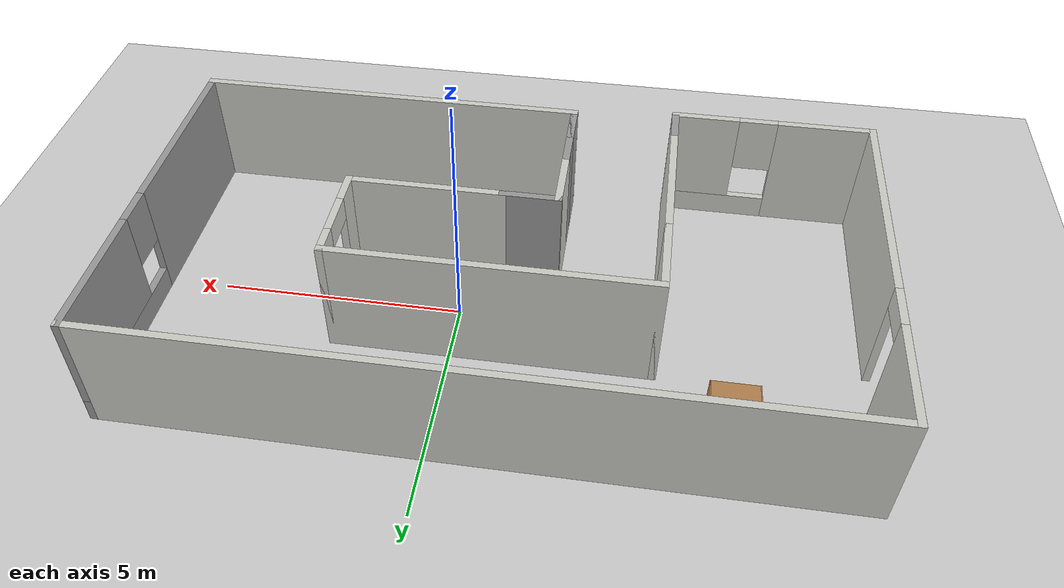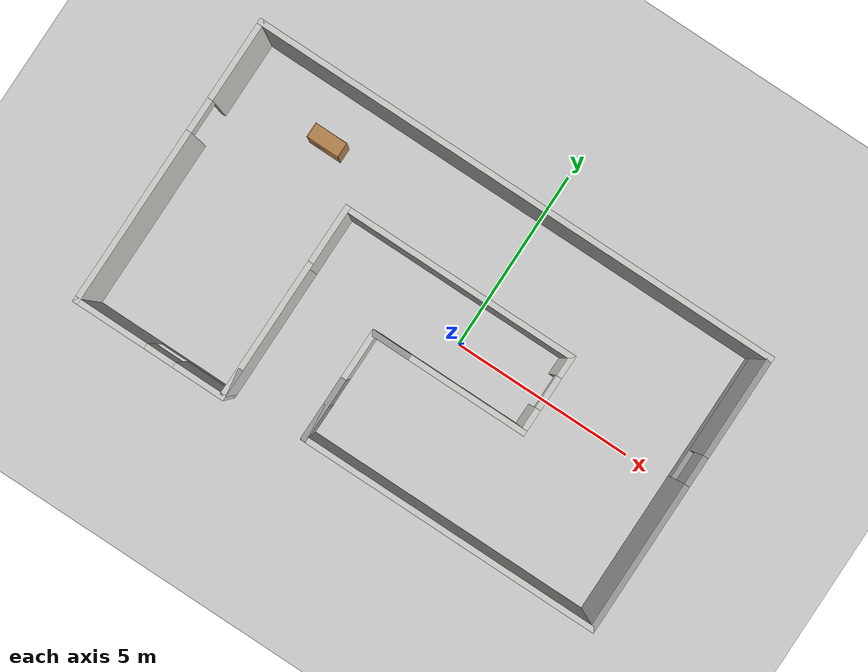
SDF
<sdf version="1.7">
 <world name="default">
  <light name="sun" type="directional">
   <pose>0 0 10 0 -0 0</pose>
   <diffuse>0.8 0.8 0.8 1</diffuse>
   <specular>0.2 0.2 0.2 1</specular>
   <attenuation>
    <range>1000</range>
    <constant>0.9</constant>
    <linear>0.01</linear>
    <quadratic>0.001</quadratic>
   </attenuation>
   <direction>-0.5 0.1 -0.9</direction>
   <spot><inner_angle>0</inner_angle><outer_angle>0</outer_angle><falloff>0</falloff></spot>
  </light>
  <model name="ground_plane">
   <static>1</static>
   <link name="link">
    <collision name="collision">
     <geometry><plane><normal>0 0 1</normal><size>100 100</size></plane></geometry>
     <surface>
      <contact><collide_bitmask>65535</collide_bitmask></contact>
      <friction><ode><mu>100</mu><mu2>50</mu2></ode></friction>
     </surface>
    </collision>
    <visual name="visual">
     <cast_shadows>0</cast_shadows>
     <geometry><plane><normal>0 0 1</normal><size>100 100</size></plane></geometry>
     <material>
      <script><uri>file://media/materials/scripts/gazebo.material</uri><name>Gazebo/Grey</name></script>
     </material>
    </visual>
   </link>
  </model>
  <gravity>0 0 -9.8</gravity>
  <magnetic_field>6e-06 2.3e-05 -4.2e-05</magnetic_field>
  <atmosphere type="adiabatic"/>
  <physics type="ode">
   <max_step_size>0.001</max_step_size>
   <real_time_factor>1</real_time_factor>
   <real_time_update_rate>1000</real_time_update_rate>
  </physics>
  <scene><ambient>0.4 0.4 0.4 1</ambient><background>0.7 0.7 0.7 1</background><shadows>1</shadows></scene>
  <audio><device>default</device></audio>
  <spherical_coordinates>
   <surface_model>EARTH_WGS84</surface_model>
   <latitude_deg>0</latitude_deg>
   <longitude_deg>0</longitude_deg>
   <elevation>0</elevation>
   <heading_deg>0</heading_deg>
  </spherical_coordinates>
  <model name="Untitled">
   <pose>-0.925 -0.205 0 0 -0 0</pose>
   <link name="Wall_0">
    <collision name="Wall_0_Collision">
     <geometry><box><size>0.75 0.15 2.5</size></box></geometry>
     <pose>0 0 1.25 0 -0 0</pose>
    </collision>
    <visual name="Wall_0_Visual">
     <pose>0 0 1.25 0 -0 0</pose>
     <geometry><box><size>0.75 0.15 2.5</size></box></geometry>
     <material>
      <script><uri>file://media/materials/scripts/gazebo.material</uri><name>Gazebo/Grey</name></script>
      <ambient>1 1 1 1</ambient>
     </material>
     <meta><layer>0</layer></meta>
    </visual>
    <pose>-3.075 -3.525 0 0 -0 -1.5708</pose>
   </link>
   <link name="Wall_1">
    <collision name="Wall_1_Collision">
     <geometry><box><size>3.75 0.15 2.5</size></box></geometry>
     <pose>0 0 1.25 0 -0 0</pose>
    </collision>
    <visual name="Wall_1_Visual">
     <pose>0 0 1.25 0 -0 0</pose>
     <geometry><box><size>3.75 0.15 2.5</size></box></geometry>
     <material>
      <script><uri>file://media/materials/scripts/gazebo.material</uri><name>Gazebo/CeilingTiled</name></script>
      <ambient>1 1 1 1</ambient>
     </material>
     <meta><layer>0</layer></meta>
    </visual>
    <pose>-3.075 -2.025 0 0 -0 1.5708</pose>
   </link>
   <link name="Wall_10">
    <pose>-0.925 -2.875 0 0 -0 -1.5708</pose>
    <visual name="Wall_10_Visual_0">
     <pose>0 0 1.25 0 -0 0</pose>
     <geometry><box><size>1.75 0.15 2.5</size></box></geometry>
     <material>
      <script><uri>file://media/materials/scripts/gazebo.material</uri><name>Gazebo/Grey</name></script>
      <ambient>1 1 1 1</ambient>
     </material>
     <meta><layer>0</layer></meta>
    </visual>
    <collision name="Wall_10_Collision_0">
     <geometry><box><size>1.75 0.15 2.5</size></box></geometry>
     <pose>0 0 1.25 0 -0 0</pose>
    </collision>
    <visual name="Wall_10_Visual_1">
     <pose>0.377182 0 1.25 0 -0 0</pose>
     <geometry><box><size>0.995636 0.15 2.5</size></box></geometry>
     <material>
      <script><uri>file://media/materials/scripts/gazebo.material</uri><name>Gazebo/Grey</name></script>
      <ambient>1 1 1 1</ambient>
     </material>
     <meta><layer>0</layer></meta>
    </visual>
    <collision name="Wall_10_Collision_1">
     <geometry><box><size>0.995636 0.15 2.5</size></box></geometry>
     <pose>0.377182 0 1.25 0 -0 0</pose>
    </collision>
   </link>
   <link name="Wall_11">
    <collision name="Wall_11_Collision">
     <geometry><box><size>8.25 0.15 2.5</size></box></geometry>
     <pose>0 0 1.25 0 -0 0</pose>
    </collision>
    <visual name="Wall_11_Visual">
     <pose>0 0 1.25 0 -0 0</pose>
     <geometry><box><size>8.25 0.15 2.5</size></box></geometry>
     <material>
      <script><uri>file://media/materials/scripts/gazebo.material</uri><name>Gazebo/CeilingTiled</name></script>
      <ambient>1 1 1 1</ambient>
     </material>
     <meta><layer>0</layer></meta>
    </visual>
    <pose>3.125 -3.675 0 0 -0 0</pose>
   </link>
   <link name="Wall_12">
    <pose>7.175 0.125 0 0 -0 1.5708</pose>
    <visual name="Wall_12_Visual_0">
     <pose>-1.82355 0 1.25 0 -0 0</pose>
     <geometry><box><size>4.1029 0.15 2.5</size></box></geometry>
     <material>
      <script><uri>file://media/materials/scripts/gazebo.material</uri><name>Gazebo/Grey</name></script>
      <ambient>1 1 1 1</ambient>
     </material>
     <meta><layer>0</layer></meta>
    </visual>
    <collision name="Wall_12_Collision_0">
     <geometry><box><size>4.1029 0.15 2.5</size></box></geometry>
     <pose>-1.82355 0 1.25 0 -0 0</pose>
    </collision>
    <visual name="Wall_12_Visual_1">
     <pose>2.05145 0 0.25 0 -0 0</pose>
     <geometry><box><size>3.6471 0.15 0.5</size></box></geometry>
     <material>
      <script><uri>file://media/materials/scripts/gazebo.material</uri><name>Gazebo/Grey</name></script>
      <ambient>1 1 1 1</ambient>
     </material>
     <meta><layer>0</layer></meta>
    </visual>
    <collision name="Wall_12_Collision_1">
     <geometry><box><size>3.6471 0.15 0.5</size></box></geometry>
     <pose>2.05145 0 0.25 0 -0 0</pose>
    </collision>
    <visual name="Wall_12_Visual_2">
     <pose>2.45145 0 1.5 0 -0 0</pose>
     <geometry><box><size>2.8471 0.15 2</size></box></geometry>
     <material>
      <script><uri>file://media/materials/scripts/gazebo.material</uri><name>Gazebo/Grey</name></script>
      <ambient>1 1 1 1</ambient>
     </material>
     <meta><layer>0</layer></meta>
    </visual>
    <collision name="Wall_12_Collision_2">
     <geometry><box><size>2.8471 0.15 2</size></box></geometry>
     <pose>2.45145 0 1.5 0 -0 0</pose>
    </collision>
    <visual name="Wall_12_Visual_3">
     <pose>0.627899 0 1.9 0 -0 0</pose>
     <geometry><box><size>0.8 0.15 1.2</size></box></geometry>
     <material>
      <script><uri>file://media/materials/scripts/gazebo.material</uri><name>Gazebo/Grey</name></script>
      <ambient>1 1 1 1</ambient>
     </material>
     <meta><layer>0</layer></meta>
    </visual>
    <collision name="Wall_12_Collision_3">
     <geometry><box><size>0.8 0.15 1.2</size></box></geometry>
     <pose>0.627899 0 1.9 0 -0 0</pose>
    </collision>
   </link>
   <link name="Wall_13">
    <collision name="Wall_13_Collision">
     <geometry><box><size>14.5 0.15 2.5</size></box></geometry>
     <pose>0 0 1.25 0 -0 0</pose>
    </collision>
    <visual name="Wall_13_Visual">
     <pose>0 0 1.25 0 -0 0</pose>
     <geometry><box><size>14.5 0.15 2.5</size></box></geometry>
     <material>
      <script><uri>file://media/materials/scripts/gazebo.material</uri><name>Gazebo/CeilingTiled</name></script>
      <ambient>1 1 1 1</ambient>
     </material>
     <meta><layer>0</layer></meta>
    </visual>
    <pose>0 3.925 0 0 -0 3.14159</pose>
   </link>
   <link name="Wall_14">
    <pose>-7.175 -0 0 0 -0 -1.5708</pose>
    <visual name="Wall_14_Visual_0">
     <pose>-2.87298 0 1.25 0 -0 0</pose>
     <geometry><box><size>2.25404 0.15 2.5</size></box></geometry>
     <material>
      <script><uri>file://media/materials/scripts/gazebo.material</uri><name>Gazebo/CeilingTiled</name></script>
      <ambient>1 1 1 1</ambient>
     </material>
     <meta><layer>0</layer></meta>
    </visual>
    <collision name="Wall_14_Collision_0">
     <geometry><box><size>2.25404 0.15 2.5</size></box></geometry>
     <pose>-2.87298 0 1.25 0 -0 0</pose>
    </collision>
    <visual name="Wall_14_Visual_1">
     <pose>1.57702 0 1.25 0 -0 0</pose>
     <geometry><box><size>4.84596 0.15 2.5</size></box></geometry>
     <material>
      <script><uri>file://media/materials/scripts/gazebo.material</uri><name>Gazebo/CeilingTiled</name></script>
      <ambient>1 1 1 1</ambient>
     </material>
     <meta><layer>0</layer></meta>
    </visual>
    <collision name="Wall_14_Collision_1">
     <geometry><box><size>4.84596 0.15 2.5</size></box></geometry>
     <pose>1.57702 0 1.25 0 -0 0</pose>
    </collision>
    <visual name="Wall_14_Visual_2">
     <pose>-1.29597 0 2.25 0 -0 0</pose>
     <geometry><box><size>0.9 0.15 0.5</size></box></geometry>
     <material>
      <script><uri>file://media/materials/scripts/gazebo.material</uri><name>Gazebo/CeilingTiled</name></script>
      <ambient>1 1 1 1</ambient>
     </material>
     <meta><layer>0</layer></meta>
    </visual>
    <collision name="Wall_14_Collision_2">
     <geometry><box><size>0.9 0.15 0.5</size></box></geometry>
     <pose>-1.29597 0 2.25 0 -0 0</pose>
    </collision>
   </link>
   <link name="Wall_15">
    <pose>-5.125 -3.925 0 0 -0 0</pose>
    <visual name="Wall_15_Visual_0">
     <pose>-1.1147 0 1.25 0 -0 0</pose>
     <geometry><box><size>2.0206 0.15 2.5</size></box></geometry>
     <material>
      <script><uri>file://media/materials/scripts/gazebo.material</uri><name>Gazebo/CeilingTiled</name></script>
      <ambient>1 1 1 1</ambient>
     </material>
     <meta><layer>0</layer></meta>
    </visual>
    <collision name="Wall_15_Collision_0">
     <geometry><box><size>2.0206 0.15 2.5</size></box></geometry>
     <pose>-1.1147 0 1.25 0 -0 0</pose>
    </collision>
    <visual name="Wall_15_Visual_1">
     <pose>1.0103 0 0.25 0 -0 0</pose>
     <geometry><box><size>2.2294 0.15 0.5</size></box></geometry>
     <material>
      <script><uri>file://media/materials/scripts/gazebo.material</uri><name>Gazebo/CeilingTiled</name></script>
      <ambient>1 1 1 1</ambient>
     </material>
     <meta><layer>0</layer></meta>
    </visual>
    <collision name="Wall_15_Collision_1">
     <geometry><box><size>2.2294 0.15 0.5</size></box></geometry>
     <pose>1.0103 0 0.25 0 -0 0</pose>
    </collision>
    <visual name="Wall_15_Visual_2">
     <pose>1.4103 0 1.5 0 -0 0</pose>
     <geometry><box><size>1.4294 0.15 2</size></box></geometry>
     <material>
      <script><uri>file://media/materials/scripts/gazebo.material</uri><name>Gazebo/CeilingTiled</name></script>
      <ambient>1 1 1 1</ambient>
     </material>
     <meta><layer>0</layer></meta>
    </visual>
    <collision name="Wall_15_Collision_2">
     <geometry><box><size>1.4294 0.15 2</size></box></geometry>
     <pose>1.4103 0 1.5 0 -0 0</pose>
    </collision>
    <visual name="Wall_15_Visual_3">
     <pose>0.295599 0 1.9 0 -0 0</pose>
     <geometry><box><size>0.8 0.15 1.2</size></box></geometry>
     <material>
      <script><uri>file://media/materials/scripts/gazebo.material</uri><name>Gazebo/CeilingTiled</name></script>
      <ambient>1 1 1 1</ambient>
     </material>
     <meta><layer>0</layer></meta>
    </visual>
    <collision name="Wall_15_Collision_3">
     <geometry><box><size>0.8 0.15 1.2</size></box></geometry>
     <pose>0.295599 0 1.9 0 -0 0</pose>
    </collision>
   </link>
   <link name="Wall_4">
    <collision name="Wall_4_Collision">
     <geometry><box><size>1.75 0.15 2.5</size></box></geometry>
     <pose>0 0 1.25 0 -0 0</pose>
    </collision>
    <visual name="Wall_4_Visual">
     <pose>0 0 1.25 0 -0 0</pose>
     <geometry><box><size>1.75 0.15 2.5</size></box></geometry>
     <material>
      <script><uri>file://media/materials/scripts/gazebo.material</uri><name>Gazebo/CeilingTiled</name></script>
      <ambient>1 1 1 1</ambient>
     </material>
     <meta><layer>0</layer></meta>
    </visual>
    <pose>-3.075 0.575 0 0 -0 1.5708</pose>
   </link>
   <link name="Wall_5">
    <collision name="Wall_5_Collision">
     <geometry><box><size>6.5 0.15 2.5</size></box></geometry>
     <pose>0 0 1.25 0 -0 0</pose>
    </collision>
    <visual name="Wall_5_Visual">
     <pose>0 0 1.25 0 -0 0</pose>
     <geometry><box><size>6.5 0.15 2.5</size></box></geometry>
     <material>
      <script><uri>file://media/materials/scripts/gazebo.material</uri><name>Gazebo/CeilingTiled</name></script>
      <ambient>1 1 1 1</ambient>
     </material>
     <meta><layer>0</layer></meta>
    </visual>
    <pose>0.1 1.375 0 0 -0 0</pose>
   </link>
   <link name="Wall_6">
    <pose>3.275 0.325 0 0 -0 -1.5708</pose>
    <visual name="Wall_6_Visual_0">
     <pose>-0.810371 0 1.25 0 -0 0</pose>
     <geometry><box><size>0.629259 0.15 2.5</size></box></geometry>
     <material>
      <script><uri>file://media/materials/scripts/gazebo.material</uri><name>Gazebo/CeilingTiled</name></script>
      <ambient>1 1 1 1</ambient>
     </material>
     <meta><layer>0</layer></meta>
    </visual>
    <collision name="Wall_6_Collision_0">
     <geometry><box><size>0.629259 0.15 2.5</size></box></geometry>
     <pose>-0.810371 0 1.25 0 -0 0</pose>
    </collision>
    <visual name="Wall_6_Visual_1">
     <pose>0.764629 0 1.25 0 -0 0</pose>
     <geometry><box><size>0.720741 0.15 2.5</size></box></geometry>
     <material>
      <script><uri>file://media/materials/scripts/gazebo.material</uri><name>Gazebo/CeilingTiled</name></script>
      <ambient>1 1 1 1</ambient>
     </material>
     <meta><layer>0</layer></meta>
    </visual>
    <collision name="Wall_6_Collision_1">
     <geometry><box><size>0.720741 0.15 2.5</size></box></geometry>
     <pose>0.764629 0 1.25 0 -0 0</pose>
    </collision>
    <visual name="Wall_6_Visual_2">
     <pose>-0.045741 0 2.25 0 -0 0</pose>
     <geometry><box><size>0.9 0.15 0.5</size></box></geometry>
     <material>
      <script><uri>file://media/materials/scripts/gazebo.material</uri><name>Gazebo/CeilingTiled</name></script>
      <ambient>1 1 1 1</ambient>
     </material>
     <meta><layer>0</layer></meta>
    </visual>
    <collision name="Wall_6_Collision_2">
     <geometry><box><size>0.9 0.15 0.5</size></box></geometry>
     <pose>-0.045741 0 2.25 0 -0 0</pose>
    </collision>
   </link>
   <link name="Wall_7">
    <collision name="Wall_7_Collision">
     <geometry><box><size>3.25 0.15 2.5</size></box></geometry>
     <pose>0 0 1.25 0 -0 0</pose>
    </collision>
    <visual name="Wall_7_Visual">
     <pose>0 0 1.25 0 -0 0</pose>
     <geometry><box><size>3.25 0.15 2.5</size></box></geometry>
     <material>
      <script><uri>file://media/materials/scripts/gazebo.material</uri><name>Gazebo/CeilingTiled</name></script>
      <ambient>1 1 1 1</ambient>
     </material>
     <meta><layer>0</layer></meta>
    </visual>
    <pose>1.725 -0.725 0 0 -0 3.14159</pose>
   </link>
   <link name="Wall_8">
    <collision name="Wall_8_Collision">
     <geometry><box><size>1.25 0.15 2.5</size></box></geometry>
     <pose>0 0 1.25 0 -0 0</pose>
    </collision>
    <visual name="Wall_8_Visual">
     <pose>0 0 1.25 0 -0 0</pose>
     <geometry><box><size>1.25 0.15 2.5</size></box></geometry>
     <material>
      <script><uri>file://media/materials/scripts/gazebo.material</uri><name>Gazebo/Grey</name></script>
      <ambient>1 1 1 1</ambient>
     </material>
     <meta><layer>0</layer></meta>
    </visual>
    <pose>-0.375 -0.725 0 0 -0 3.14159</pose>
   </link>
   <link name="Wall_9">
    <collision name="Wall_9_Collision">
     <geometry><box><size>1.5 0.15 2.5</size></box></geometry>
     <pose>0 0 1.25 0 -0 0</pose>
    </collision>
    <visual name="Wall_9_Visual">
     <pose>0 0 1.25 0 -0 0</pose>
     <geometry><box><size>1.5 0.15 2.5</size></box></geometry>
     <material>
      <script><uri>file://media/materials/scripts/gazebo.material</uri><name>Gazebo/CeilingTiled</name></script>
      <ambient>1 1 1 1</ambient>
     </material>
     <meta><layer>0</layer></meta>
    </visual>
    <pose>-0.925 -1.4 0 0 -0 -1.5708</pose>
   </link>
   <static>1</static>
  </model>
  <model name="bookshelf">
   <static>1</static>
   <link name="link">
    <inertial><mass>1</mass></inertial>
    <collision name="back">
     <pose>0 0.005 0.6 0 -0 0</pose>
     <geometry><box><size>0.9 0.01 1.2</size></box></geometry>
    </collision>
    <visual name="visual1">
     <pose>0 0.005 0.6 0 -0 0</pose>
     <geometry><box><size>0.9 0.01 1.2</size></box></geometry>
     <material>
      <script><uri>file://media/materials/scripts/gazebo.material</uri><name>Gazebo/Wood</name></script>
     </material>
    </visual>
    <collision name="left_side">
     <pose>0.45 -0.195 0.6 0 -0 0</pose>
     <geometry><box><size>0.02 0.4 1.2</size></box></geometry>
    </collision>
    <visual name="visual2">
     <pose>0.45 -0.195 0.6 0 -0 0</pose>
     <geometry><box><size>0.02 0.4 1.2</size></box></geometry>
     <material>
      <script><uri>file://media/materials/scripts/gazebo.material</uri><name>Gazebo/Wood</name></script>
     </material>
    </visual>
    <collision name="right_side">
     <pose>-0.45 -0.195 0.6 0 -0 0</pose>
     <geometry><box><size>0.02 0.4 1.2</size></box></geometry>
    </collision>
    <visual name="visual3">
     <pose>-0.45 -0.195 0.6 0 -0 0</pose>
     <geometry><box><size>0.02 0.4 1.2</size></box></geometry>
     <material>
      <script><uri>file://media/materials/scripts/gazebo.material</uri><name>Gazebo/Wood</name></script>
     </material>
    </visual>
    <collision name="bottom">
     <pose>0 -0.195 0.03 0 -0 0</pose>
     <geometry><box><size>0.88 0.4 0.06</size></box></geometry>
    </collision>
    <visual name="visual4">
     <pose>0 -0.195 0.03 0 -0 0</pose>
     <geometry><box><size>0.88 0.4 0.06</size></box></geometry>
     <material>
      <script><uri>file://media/materials/scripts/gazebo.material</uri><name>Gazebo/Wood</name></script>
     </material>
    </visual>
    <collision name="top">
     <pose>0 -0.195 1.19 0 -0 0</pose>
     <geometry><box><size>0.88 0.4 0.02</size></box></geometry>
    </collision>
    <visual name="visual5">
     <pose>0 -0.195 1.19 0 -0 0</pose>
     <geometry><box><size>0.88 0.4 0.02</size></box></geometry>
     <material>
      <script><uri>file://media/materials/scripts/gazebo.material</uri><name>Gazebo/Wood</name></script>
     </material>
    </visual>
    <collision name="low_shelf">
     <pose>0 -0.195 0.43 0 -0 0</pose>
     <geometry><box><size>0.88 0.4 0.02</size></box></geometry>
    </collision>
    <visual name="visual6">
     <pose>0 -0.195 0.43 0 -0 0</pose>
     <geometry><box><size>0.88 0.4 0.02</size></box></geometry>
     <material>
      <script><uri>file://media/materials/scripts/gazebo.material</uri><name>Gazebo/Wood</name></script>
     </material>
    </visual>
    <collision name="high_shelf">
     <pose>0 -0.195 0.8 0 -0 0</pose>
     <geometry><box><size>0.88 0.4 0.02</size></box></geometry>
    </collision>
    <visual name="visual7">
     <pose>0 -0.195 0.8 0 -0 0</pose>
     <geometry><box><size>0.88 0.4 0.02</size></box></geometry>
     <material>
      <script><uri>file://media/materials/scripts/gazebo.material</uri><name>Gazebo/Wood</name></script>
     </material>
    </visual>
   </link>
   <pose>-5.43464 2.54917 0 0 -0 0</pose>
  </model>
 </world>
</sdf>
